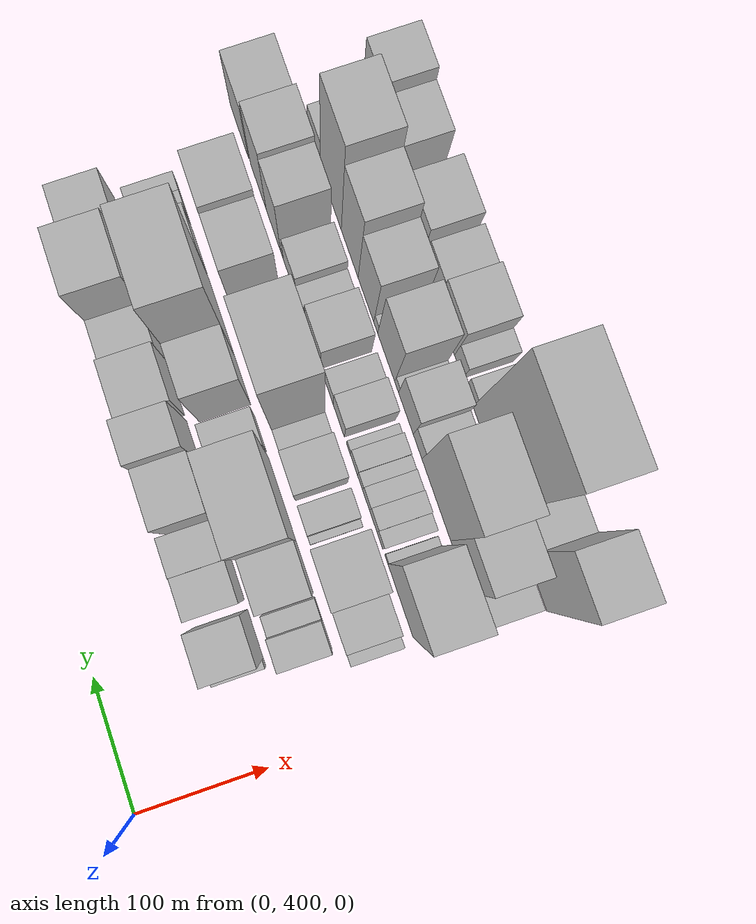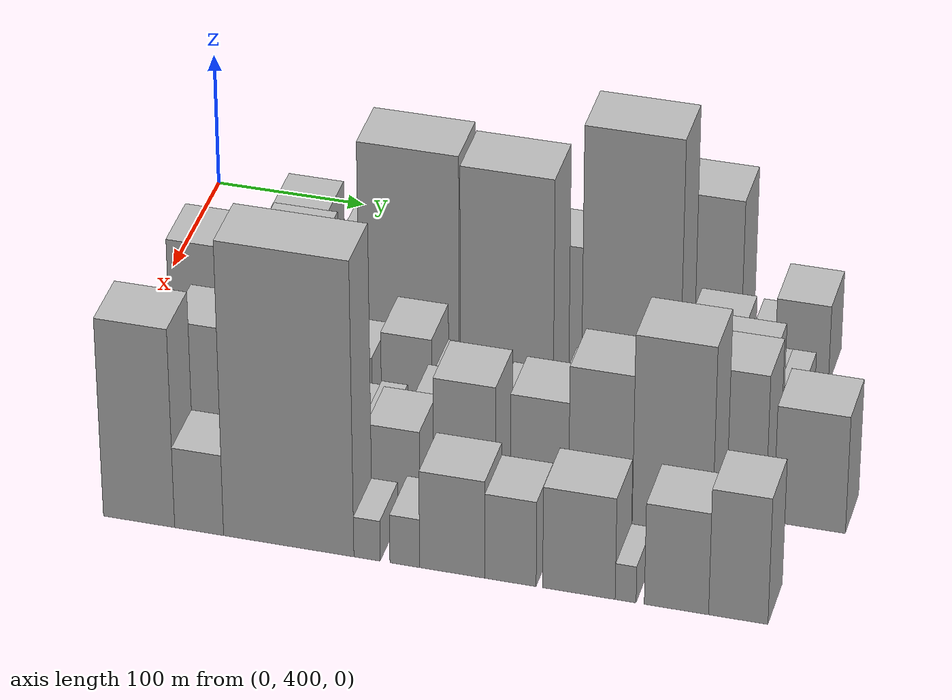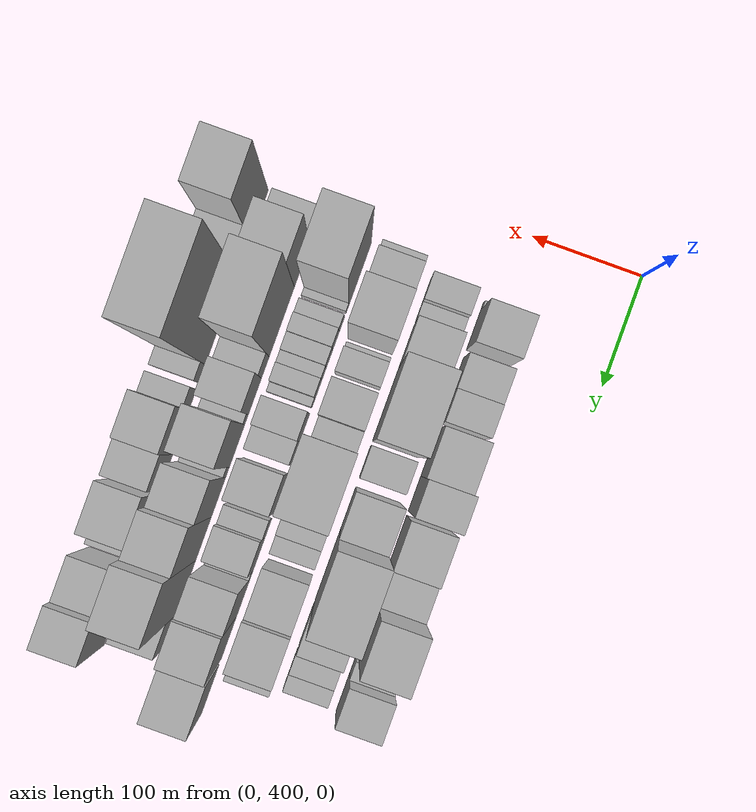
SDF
<sdf version="1.6">
 <world name="default">
  <model name="building_38">
   <static>1</static>
   <pose>100.0000 470.5981 0 0.000000 0.000000 0.000000</pose>
   <link name="link">
    <pose>0 0 7.50 0 0 0</pose>
    <collision name="collision"><geometry><box><size>40.0000 6.5901 15.0000</size></box></geometry></collision>
    <visual name="visual">
     <cast_shadows>0</cast_shadows>
     <geometry><box><size>40.0000 6.5901 15.0000</size></box></geometry>
     <material>
      <script>
       <uri>model://HANNAS_wall/materials/scripts</uri>
       <uri>model://HANNAS_wall/materials/textures</uri>
       <name>vrc/HANNAS_wall</name>
      </script>
     </material>
    </visual>
   </link>
  </model>
  <model name="building_39">
   <static>1</static>
   <pose>100.0000 492.0615 0 0.000000 0.000000 0.000000</pose>
   <link name="link">
    <pose>0 0 36.00 0 0 0</pose>
    <collision name="collision"><geometry><box><size>40.0000 36.3368 72.0000</size></box></geometry></collision>
    <visual name="visual">
     <cast_shadows>0</cast_shadows>
     <geometry><box><size>40.0000 36.3368 72.0000</size></box></geometry>
     <material>
      <script>
       <uri>model://HANNAS_wall/materials/scripts</uri>
       <uri>model://HANNAS_wall/materials/textures</uri>
       <name>vrc/HANNAS_wall</name>
      </script>
     </material>
    </visual>
   </link>
  </model>
  <model name="building_40">
   <static>1</static>
   <pose>100.0000 532.6207 0 0.000000 0.000000 0.000000</pose>
   <link name="link">
    <pose>0 0 27.00 0 0 0</pose>
    <collision name="collision"><geometry><box><size>40.0000 30.7815 54.0000</size></box></geometry></collision>
    <visual name="visual">
     <cast_shadows>0</cast_shadows>
     <geometry><box><size>40.0000 30.7815 54.0000</size></box></geometry>
     <material>
      <script>
       <uri>model://HANNAS_wall/materials/scripts</uri>
       <uri>model://HANNAS_wall/materials/textures</uri>
       <name>vrc/HANNAS_wall</name>
      </script>
     </material>
    </visual>
   </link>
  </model>
  <model name="building_41">
   <static>1</static>
   <pose>100.0000 562.3213 0 0.000000 0.000000 0.000000</pose>
   <link name="link">
    <pose>0 0 28.50 0 0 0</pose>
    <collision name="collision"><geometry><box><size>40.0000 28.6198 57.0000</size></box></geometry></collision>
    <visual name="visual">
     <cast_shadows>0</cast_shadows>
     <geometry><box><size>40.0000 28.6198 57.0000</size></box></geometry>
     <material>
      <script>
       <uri>model://HANNAS_wall/materials/scripts</uri>
       <uri>model://HANNAS_wall/materials/textures</uri>
       <name>vrc/HANNAS_wall</name>
      </script>
     </material>
    </visual>
   </link>
  </model>
  <model name="building_42">
   <static>1</static>
   <pose>100.0000 602.5294 0 0.000000 0.000000 0.000000</pose>
   <link name="link">
    <pose>0 0 37.50 0 0 0</pose>
    <collision name="collision"><geometry><box><size>40.0000 43.7964 75.0000</size></box></geometry></collision>
    <visual name="visual">
     <cast_shadows>0</cast_shadows>
     <geometry><box><size>40.0000 43.7964 75.0000</size></box></geometry>
     <material>
      <script>
       <uri>model://HANNAS_wall/materials/scripts</uri>
       <uri>model://HANNAS_wall/materials/textures</uri>
       <name>vrc/HANNAS_wall</name>
      </script>
     </material>
    </visual>
   </link>
  </model>
  <model name="building_43">
   <static>1</static>
   <pose>100.0000 640.0904 0 0.000000 0.000000 0.000000</pose>
   <link name="link">
    <pose>0 0 49.50 0 0 0</pose>
    <collision name="collision"><geometry><box><size>40.0000 31.3254 99.0000</size></box></geometry></collision>
    <visual name="visual">
     <cast_shadows>0</cast_shadows>
     <geometry><box><size>40.0000 31.3254 99.0000</size></box></geometry>
     <material>
      <script>
       <uri>model://HANNAS_wall/materials/scripts</uri>
       <uri>model://HANNAS_wall/materials/textures</uri>
       <name>vrc/HANNAS_wall</name>
      </script>
     </material>
    </visual>
   </link>
  </model>
  <model name="building_44">
   <static>1</static>
   <pose>100.0000 680.9795 0 0.000000 0.000000 0.000000</pose>
   <link name="link">
    <pose>0 0 37.50 0 0 0</pose>
    <collision name="collision"><geometry><box><size>40.0000 42.4528 75.0000</size></box></geometry></collision>
    <visual name="visual">
     <cast_shadows>0</cast_shadows>
     <geometry><box><size>40.0000 42.4528 75.0000</size></box></geometry>
     <material>
      <script>
       <uri>model://HANNAS_wall/materials/scripts</uri>
       <uri>model://HANNAS_wall/materials/textures</uri>
       <name>vrc/HANNAS_wall</name>
      </script>
     </material>
    </visual>
   </link>
  </model>
  <model name="building_45">
   <static>1</static>
   <pose>100.0000 717.9744 0 0.000000 0.000000 0.000000</pose>
   <link name="link">
    <pose>0 0 31.50 0 0 0</pose>
    <collision name="collision"><geometry><box><size>40.0000 31.5372 63.0000</size></box></geometry></collision>
    <visual name="visual">
     <cast_shadows>0</cast_shadows>
     <geometry><box><size>40.0000 31.5372 63.0000</size></box></geometry>
     <material>
      <script>
       <uri>model://HANNAS_wall/materials/scripts</uri>
       <uri>model://HANNAS_wall/materials/textures</uri>
       <name>vrc/HANNAS_wall</name>
      </script>
     </material>
    </visual>
   </link>
  </model>
  <model name="building_46">
   <static>1</static>
   <pose>100.0000 757.1625 0 0.000000 0.000000 0.000000</pose>
   <link name="link">
    <pose>0 0 64.50 0 0 0</pose>
    <collision name="collision"><geometry><box><size>40.0000 46.8390 129.0000</size></box></geometry></collision>
    <visual name="visual">
     <cast_shadows>0</cast_shadows>
     <geometry><box><size>40.0000 46.8390 129.0000</size></box></geometry>
     <material>
      <script>
       <uri>model://HANNAS_wall/materials/scripts</uri>
       <uri>model://HANNAS_wall/materials/textures</uri>
       <name>vrc/HANNAS_wall</name>
      </script>
     </material>
    </visual>
   </link>
  </model>
  <model name="building_47">
   <static>1</static>
   <pose>100.0000 794.6642 0 0.000000 0.000000 0.000000</pose>
   <link name="link">
    <pose>0 0 15.00 0 0 0</pose>
    <collision name="collision"><geometry><box><size>40.0000 16.1645 30.0000</size></box></geometry></collision>
    <visual name="visual">
     <cast_shadows>0</cast_shadows>
     <geometry><box><size>40.0000 16.1645 30.0000</size></box></geometry>
     <material>
      <script>
       <uri>model://HANNAS_wall/materials/scripts</uri>
       <uri>model://HANNAS_wall/materials/textures</uri>
       <name>vrc/HANNAS_wall</name>
      </script>
     </material>
    </visual>
   </link>
  </model>
  <model name="building_48">
   <static>1</static>
   <pose>100.0000 820.0291 0 0.000000 0.000000 0.000000</pose>
   <link name="link">
    <pose>0 0 30.00 0 0 0</pose>
    <collision name="collision"><geometry><box><size>40.0000 34.5654 60.0000</size></box></geometry></collision>
    <visual name="visual">
     <cast_shadows>0</cast_shadows>
     <geometry><box><size>40.0000 34.5654 60.0000</size></box></geometry>
     <material>
      <script>
       <uri>model://HANNAS_wall/materials/scripts</uri>
       <uri>model://HANNAS_wall/materials/textures</uri>
       <name>vrc/HANNAS_wall</name>
      </script>
     </material>
    </visual>
   </link>
  </model>
  <model name="building_84">
   <static>1</static>
   <pose>149.0000 475.9619 0 0.000000 0.000000 0.000000</pose>
   <link name="link">
    <pose>0 0 22.50 0 0 0</pose>
    <collision name="collision"><geometry><box><size>40.0000 24.0214 45.0000</size></box></geometry></collision>
    <visual name="visual">
     <cast_shadows>0</cast_shadows>
     <geometry><box><size>40.0000 24.0214 45.0000</size></box></geometry>
     <material>
      <script>
       <uri>model://HANNAS_wall/materials/scripts</uri>
       <uri>model://HANNAS_wall/materials/textures</uri>
       <name>vrc/HANNAS_wall</name>
      </script>
     </material>
    </visual>
   </link>
  </model>
  <model name="building_85">
   <static>1</static>
   <pose>149.0000 495.6222 0 0.000000 0.000000 0.000000</pose>
   <link name="link">
    <pose>0 0 15.00 0 0 0</pose>
    <collision name="collision"><geometry><box><size>40.0000 15.2992 30.0000</size></box></geometry></collision>
    <visual name="visual">
     <cast_shadows>0</cast_shadows>
     <geometry><box><size>40.0000 15.2992 30.0000</size></box></geometry>
     <material>
      <script>
       <uri>model://HANNAS_wall/materials/scripts</uri>
       <uri>model://HANNAS_wall/materials/textures</uri>
       <name>vrc/HANNAS_wall</name>
      </script>
     </material>
    </visual>
   </link>
  </model>
  <model name="building_86">
   <static>1</static>
   <pose>149.0000 525.7933 0 0.000000 0.000000 0.000000</pose>
   <link name="link">
    <pose>0 0 37.50 0 0 0</pose>
    <collision name="collision"><geometry><box><size>40.0000 39.0430 75.0000</size></box></geometry></collision>
    <visual name="visual">
     <cast_shadows>0</cast_shadows>
     <geometry><box><size>40.0000 39.0430 75.0000</size></box></geometry>
     <material>
      <script>
       <uri>model://HANNAS_wall/materials/scripts</uri>
       <uri>model://HANNAS_wall/materials/textures</uri>
       <name>vrc/HANNAS_wall</name>
      </script>
     </material>
    </visual>
   </link>
  </model>
  <model name="building_87">
   <static>1</static>
   <pose>149.0000 577.8610 0 0.000000 0.000000 0.000000</pose>
   <link name="link">
    <pose>0 0 82.50 0 0 0</pose>
    <collision name="collision"><geometry><box><size>40.0000 65.0923 165.0000</size></box></geometry></collision>
    <visual name="visual">
     <cast_shadows>0</cast_shadows>
     <geometry><box><size>40.0000 65.0923 165.0000</size></box></geometry>
     <material>
      <script>
       <uri>model://HANNAS_wall/materials/scripts</uri>
       <uri>model://HANNAS_wall/materials/textures</uri>
       <name>vrc/HANNAS_wall</name>
      </script>
     </material>
    </visual>
   </link>
  </model>
  <model name="building_88">
   <static>1</static>
   <pose>149.0000 628.4962 0 0.000000 0.000000 0.000000</pose>
   <link name="link">
    <pose>0 0 25.50 0 0 0</pose>
    <collision name="collision"><geometry><box><size>40.0000 28.1781 51.0000</size></box></geometry></collision>
    <visual name="visual">
     <cast_shadows>0</cast_shadows>
     <geometry><box><size>40.0000 28.1781 51.0000</size></box></geometry>
     <material>
      <script>
       <uri>model://HANNAS_wall/materials/scripts</uri>
       <uri>model://HANNAS_wall/materials/textures</uri>
       <name>vrc/HANNAS_wall</name>
      </script>
     </material>
    </visual>
   </link>
  </model>
  <model name="building_89">
   <static>1</static>
   <pose>149.0000 670.5965 0 0.000000 0.000000 0.000000</pose>
   <link name="link">
    <pose>0 0 55.50 0 0 0</pose>
    <collision name="collision"><geometry><box><size>40.0000 38.0225 111.0000</size></box></geometry></collision>
    <visual name="visual">
     <cast_shadows>0</cast_shadows>
     <geometry><box><size>40.0000 38.0225 111.0000</size></box></geometry>
     <material>
      <script>
       <uri>model://HANNAS_wall/materials/scripts</uri>
       <uri>model://HANNAS_wall/materials/textures</uri>
       <name>vrc/HANNAS_wall</name>
      </script>
     </material>
    </visual>
   </link>
  </model>
  <model name="building_90">
   <static>1</static>
   <pose>149.0000 721.1269 0 0.000000 0.000000 0.000000</pose>
   <link name="link">
    <pose>0 0 100.50 0 0 0</pose>
    <collision name="collision"><geometry><box><size>40.0000 63.0383 201.0000</size></box></geometry></collision>
    <visual name="visual">
     <cast_shadows>0</cast_shadows>
     <geometry><box><size>40.0000 63.0383 201.0000</size></box></geometry>
     <material>
      <script>
       <uri>model://HANNAS_wall/materials/scripts</uri>
       <uri>model://HANNAS_wall/materials/textures</uri>
       <name>vrc/HANNAS_wall</name>
      </script>
     </material>
    </visual>
   </link>
  </model>
  <model name="building_91">
   <static>1</static>
   <pose>149.0000 774.1519 0 0.000000 0.000000 0.000000</pose>
   <link name="link">
    <pose>0 0 33.00 0 0 0</pose>
    <collision name="collision"><geometry><box><size>40.0000 35.0117 66.0000</size></box></geometry></collision>
    <visual name="visual">
     <cast_shadows>0</cast_shadows>
     <geometry><box><size>40.0000 35.0117 66.0000</size></box></geometry>
     <material>
      <script>
       <uri>model://HANNAS_wall/materials/scripts</uri>
       <uri>model://HANNAS_wall/materials/textures</uri>
       <name>vrc/HANNAS_wall</name>
      </script>
     </material>
    </visual>
   </link>
  </model>
  <model name="building_92">
   <static>1</static>
   <pose>149.0000 806.5773 0 0.000000 0.000000 0.000000</pose>
   <link name="link">
    <pose>0 0 15.00 0 0 0</pose>
    <collision name="collision"><geometry><box><size>40.0000 17.8391 30.0000</size></box></geometry></collision>
    <visual name="visual">
     <cast_shadows>0</cast_shadows>
     <geometry><box><size>40.0000 17.8391 30.0000</size></box></geometry>
     <material>
      <script>
       <uri>model://HANNAS_wall/materials/scripts</uri>
       <uri>model://HANNAS_wall/materials/textures</uri>
       <name>vrc/HANNAS_wall</name>
      </script>
     </material>
    </visual>
   </link>
  </model>
  <model name="building_93">
   <static>1</static>
   <pose>149.0000 823.0445 0 0.000000 0.000000 0.000000</pose>
   <link name="link">
    <pose>0 0 15.00 0 0 0</pose>
    <collision name="collision"><geometry><box><size>40.0000 15.0952 30.0000</size></box></geometry></collision>
    <visual name="visual">
     <cast_shadows>0</cast_shadows>
     <geometry><box><size>40.0000 15.0952 30.0000</size></box></geometry>
     <material>
      <script>
       <uri>model://HANNAS_wall/materials/scripts</uri>
       <uri>model://HANNAS_wall/materials/textures</uri>
       <name>vrc/HANNAS_wall</name>
      </script>
     </material>
    </visual>
   </link>
  </model>
  <model name="building_132">
   <static>1</static>
   <pose>198.0000 455.9290 0 0.000000 0.000000 0.000000</pose>
   <link name="link">
    <pose>0 0 12.00 0 0 0</pose>
    <collision name="collision"><geometry><box><size>40.0000 11.9843 24.0000</size></box></geometry></collision>
    <visual name="visual">
     <cast_shadows>0</cast_shadows>
     <geometry><box><size>40.0000 11.9843 24.0000</size></box></geometry>
     <material>
      <script>
       <uri>model://HANNAS_wall/materials/scripts</uri>
       <uri>model://HANNAS_wall/materials/textures</uri>
       <name>vrc/HANNAS_wall</name>
      </script>
     </material>
    </visual>
   </link>
  </model>
  <model name="building_133">
   <static>1</static>
   <pose>198.0000 478.1765 0 0.000000 0.000000 0.000000</pose>
   <link name="link">
    <pose>0 0 30.00 0 0 0</pose>
    <collision name="collision"><geometry><box><size>40.0000 32.5106 60.0000</size></box></geometry></collision>
    <visual name="visual">
     <cast_shadows>0</cast_shadows>
     <geometry><box><size>40.0000 32.5106 60.0000</size></box></geometry>
     <material>
      <script>
       <uri>model://HANNAS_wall/materials/scripts</uri>
       <uri>model://HANNAS_wall/materials/textures</uri>
       <name>vrc/HANNAS_wall</name>
      </script>
     </material>
    </visual>
   </link>
  </model>
  <model name="building_134">
   <static>1</static>
   <pose>198.0000 514.8398 0 0.000000 0.000000 0.000000</pose>
   <link name="link">
    <pose>0 0 58.50 0 0 0</pose>
    <collision name="collision"><geometry><box><size>40.0000 40.8160 117.0000</size></box></geometry></collision>
    <visual name="visual">
     <cast_shadows>0</cast_shadows>
     <geometry><box><size>40.0000 40.8160 117.0000</size></box></geometry>
     <material>
      <script>
       <uri>model://HANNAS_wall/materials/scripts</uri>
       <uri>model://HANNAS_wall/materials/textures</uri>
       <name>vrc/HANNAS_wall</name>
      </script>
     </material>
    </visual>
   </link>
  </model>
  <model name="building_135">
   <static>1</static>
   <pose>198.0000 542.2876 0 0.000000 0.000000 0.000000</pose>
   <link name="link">
    <pose>0 0 7.50 0 0 0</pose>
    <collision name="collision"><geometry><box><size>40.0000 6.0796 15.0000</size></box></geometry></collision>
    <visual name="visual">
     <cast_shadows>0</cast_shadows>
     <geometry><box><size>40.0000 6.0796 15.0000</size></box></geometry>
     <material>
      <script>
       <uri>model://HANNAS_wall/materials/scripts</uri>
       <uri>model://HANNAS_wall/materials/textures</uri>
       <name>vrc/HANNAS_wall</name>
      </script>
     </material>
    </visual>
   </link>
  </model>
  <model name="building_136">
   <static>1</static>
   <pose>198.0000 556.3649 0 0.000000 0.000000 0.000000</pose>
   <link name="link">
    <pose>0 0 19.50 0 0 0</pose>
    <collision name="collision"><geometry><box><size>40.0000 22.0751 39.0000</size></box></geometry></collision>
    <visual name="visual">
     <cast_shadows>0</cast_shadows>
     <geometry><box><size>40.0000 22.0751 39.0000</size></box></geometry>
     <material>
      <script>
       <uri>model://HANNAS_wall/materials/scripts</uri>
       <uri>model://HANNAS_wall/materials/textures</uri>
       <name>vrc/HANNAS_wall</name>
      </script>
     </material>
    </visual>
   </link>
  </model>
  <model name="building_137">
   <static>1</static>
   <pose>198.0000 589.6788 0 0.000000 0.000000 0.000000</pose>
   <link name="link">
    <pose>0 0 30.00 0 0 0</pose>
    <collision name="collision"><geometry><box><size>40.0000 32.5527 60.0000</size></box></geometry></collision>
    <visual name="visual">
     <cast_shadows>0</cast_shadows>
     <geometry><box><size>40.0000 32.5527 60.0000</size></box></geometry>
     <material>
      <script>
       <uri>model://HANNAS_wall/materials/scripts</uri>
       <uri>model://HANNAS_wall/materials/textures</uri>
       <name>vrc/HANNAS_wall</name>
      </script>
     </material>
    </visual>
   </link>
  </model>
  <model name="building_138">
   <static>1</static>
   <pose>198.0000 615.1902 0 0.000000 0.000000 0.000000</pose>
   <link name="link">
    <pose>0 0 16.50 0 0 0</pose>
    <collision name="collision"><geometry><box><size>40.0000 18.4701 33.0000</size></box></geometry></collision>
    <visual name="visual">
     <cast_shadows>0</cast_shadows>
     <geometry><box><size>40.0000 18.4701 33.0000</size></box></geometry>
     <material>
      <script>
       <uri>model://HANNAS_wall/materials/scripts</uri>
       <uri>model://HANNAS_wall/materials/textures</uri>
       <name>vrc/HANNAS_wall</name>
      </script>
     </material>
    </visual>
   </link>
  </model>
  <model name="building_139">
   <static>1</static>
   <pose>198.0000 653.9900 0 0.000000 0.000000 0.000000</pose>
   <link name="link">
    <pose>0 0 96.00 0 0 0</pose>
    <collision name="collision"><geometry><box><size>40.0000 59.1294 192.0000</size></box></geometry></collision>
    <visual name="visual">
     <cast_shadows>0</cast_shadows>
     <geometry><box><size>40.0000 59.1294 192.0000</size></box></geometry>
     <material>
      <script>
       <uri>model://HANNAS_wall/materials/scripts</uri>
       <uri>model://HANNAS_wall/materials/textures</uri>
       <name>vrc/HANNAS_wall</name>
      </script>
     </material>
    </visual>
   </link>
  </model>
  <model name="building_140">
   <static>1</static>
   <pose>198.0000 699.1258 0 0.000000 0.000000 0.000000</pose>
   <link name="link">
    <pose>0 0 21.00 0 0 0</pose>
    <collision name="collision"><geometry><box><size>40.0000 21.1423 42.0000</size></box></geometry></collision>
    <visual name="visual">
     <cast_shadows>0</cast_shadows>
     <geometry><box><size>40.0000 21.1423 42.0000</size></box></geometry>
     <material>
      <script>
       <uri>model://HANNAS_wall/materials/scripts</uri>
       <uri>model://HANNAS_wall/materials/textures</uri>
       <name>vrc/HANNAS_wall</name>
      </script>
     </material>
    </visual>
   </link>
  </model>
  <model name="building_141">
   <static>1</static>
   <pose>198.0000 718.1942 0 0.000000 0.000000 0.000000</pose>
   <link name="link">
    <pose>0 0 16.50 0 0 0</pose>
    <collision name="collision"><geometry><box><size>40.0000 16.9943 33.0000</size></box></geometry></collision>
    <visual name="visual">
     <cast_shadows>0</cast_shadows>
     <geometry><box><size>40.0000 16.9943 33.0000</size></box></geometry>
     <material>
      <script>
       <uri>model://HANNAS_wall/materials/scripts</uri>
       <uri>model://HANNAS_wall/materials/textures</uri>
       <name>vrc/HANNAS_wall</name>
      </script>
     </material>
    </visual>
   </link>
  </model>
  <model name="building_142">
   <static>1</static>
   <pose>198.0000 756.2207 0 0.000000 0.000000 0.000000</pose>
   <link name="link">
    <pose>0 0 36.00 0 0 0</pose>
    <collision name="collision"><geometry><box><size>40.0000 43.0588 72.0000</size></box></geometry></collision>
    <visual name="visual">
     <cast_shadows>0</cast_shadows>
     <geometry><box><size>40.0000 43.0588 72.0000</size></box></geometry>
     <material>
      <script>
       <uri>model://HANNAS_wall/materials/scripts</uri>
       <uri>model://HANNAS_wall/materials/textures</uri>
       <name>vrc/HANNAS_wall</name>
      </script>
     </material>
    </visual>
   </link>
  </model>
  <model name="building_143">
   <static>1</static>
   <pose>198.0000 799.1212 0 0.000000 0.000000 0.000000</pose>
   <link name="link">
    <pose>0 0 42.00 0 0 0</pose>
    <collision name="collision"><geometry><box><size>40.0000 42.7421 84.0000</size></box></geometry></collision>
    <visual name="visual">
     <cast_shadows>0</cast_shadows>
     <geometry><box><size>40.0000 42.7421 84.0000</size></box></geometry>
     <material>
      <script>
       <uri>model://HANNAS_wall/materials/scripts</uri>
       <uri>model://HANNAS_wall/materials/textures</uri>
       <name>vrc/HANNAS_wall</name>
      </script>
     </material>
    </visual>
   </link>
  </model>
  <model name="building_144">
   <static>1</static>
   <pose>198.0000 829.1901 0 0.000000 0.000000 0.000000</pose>
   <link name="link">
    <pose>0 0 16.50 0 0 0</pose>
    <collision name="collision"><geometry><box><size>40.0000 17.3957 33.0000</size></box></geometry></collision>
    <visual name="visual">
     <cast_shadows>0</cast_shadows>
     <geometry><box><size>40.0000 17.3957 33.0000</size></box></geometry>
     <material>
      <script>
       <uri>model://HANNAS_wall/materials/scripts</uri>
       <uri>model://HANNAS_wall/materials/textures</uri>
       <name>vrc/HANNAS_wall</name>
      </script>
     </material>
    </visual>
   </link>
  </model>
  <model name="building_183">
   <static>1</static>
   <pose>247.0000 480.6777 0 0.000000 0.000000 0.000000</pose>
   <link name="link">
    <pose>0 0 70.50 0 0 0</pose>
    <collision name="collision"><geometry><box><size>40.0000 55.5584 141.0000</size></box></geometry></collision>
    <visual name="visual">
     <cast_shadows>0</cast_shadows>
     <geometry><box><size>40.0000 55.5584 141.0000</size></box></geometry>
     <material>
      <script>
       <uri>model://HANNAS_wall/materials/scripts</uri>
       <uri>model://HANNAS_wall/materials/textures</uri>
       <name>vrc/HANNAS_wall</name>
      </script>
     </material>
    </visual>
   </link>
  </model>
  <model name="building_184">
   <static>1</static>
   <pose>247.0000 512.0511 0 0.000000 0.000000 0.000000</pose>
   <link name="link">
    <pose>0 0 7.50 0 0 0</pose>
    <collision name="collision"><geometry><box><size>40.0000 7.1884 15.0000</size></box></geometry></collision>
    <visual name="visual">
     <cast_shadows>0</cast_shadows>
     <geometry><box><size>40.0000 7.1884 15.0000</size></box></geometry>
     <material>
      <script>
       <uri>model://HANNAS_wall/materials/scripts</uri>
       <uri>model://HANNAS_wall/materials/textures</uri>
       <name>vrc/HANNAS_wall</name>
      </script>
     </material>
    </visual>
   </link>
  </model>
  <model name="building_185">
   <static>1</static>
   <pose>247.0000 526.1699 0 0.000000 0.000000 0.000000</pose>
   <link name="link">
    <pose>0 0 13.50 0 0 0</pose>
    <collision name="collision"><geometry><box><size>40.0000 13.0493 27.0000</size></box></geometry></collision>
    <visual name="visual">
     <cast_shadows>0</cast_shadows>
     <geometry><box><size>40.0000 13.0493 27.0000</size></box></geometry>
     <material>
      <script>
       <uri>model://HANNAS_wall/materials/scripts</uri>
       <uri>model://HANNAS_wall/materials/textures</uri>
       <name>vrc/HANNAS_wall</name>
      </script>
     </material>
    </visual>
   </link>
  </model>
  <model name="building_186">
   <static>1</static>
   <pose>247.0000 541.0096 0 0.000000 0.000000 0.000000</pose>
   <link name="link">
    <pose>0 0 16.50 0 0 0</pose>
    <collision name="collision"><geometry><box><size>40.0000 16.6300 33.0000</size></box></geometry></collision>
    <visual name="visual">
     <cast_shadows>0</cast_shadows>
     <geometry><box><size>40.0000 16.6300 33.0000</size></box></geometry>
     <material>
      <script>
       <uri>model://HANNAS_wall/materials/scripts</uri>
       <uri>model://HANNAS_wall/materials/textures</uri>
       <name>vrc/HANNAS_wall</name>
      </script>
     </material>
    </visual>
   </link>
  </model>
  <model name="building_187">
   <static>1</static>
   <pose>247.0000 557.2491 0 0.000000 0.000000 0.000000</pose>
   <link name="link">
    <pose>0 0 15.00 0 0 0</pose>
    <collision name="collision"><geometry><box><size>40.0000 15.8490 30.0000</size></box></geometry></collision>
    <visual name="visual">
     <cast_shadows>0</cast_shadows>
     <geometry><box><size>40.0000 15.8490 30.0000</size></box></geometry>
     <material>
      <script>
       <uri>model://HANNAS_wall/materials/scripts</uri>
       <uri>model://HANNAS_wall/materials/textures</uri>
       <name>vrc/HANNAS_wall</name>
      </script>
     </material>
    </visual>
   </link>
  </model>
  <model name="building_188">
   <static>1</static>
   <pose>247.0000 570.7877 0 0.000000 0.000000 0.000000</pose>
   <link name="link">
    <pose>0 0 13.50 0 0 0</pose>
    <collision name="collision"><geometry><box><size>40.0000 11.2282 27.0000</size></box></geometry></collision>
    <visual name="visual">
     <cast_shadows>0</cast_shadows>
     <geometry><box><size>40.0000 11.2282 27.0000</size></box></geometry>
     <material>
      <script>
       <uri>model://HANNAS_wall/materials/scripts</uri>
       <uri>model://HANNAS_wall/materials/textures</uri>
       <name>vrc/HANNAS_wall</name>
      </script>
     </material>
    </visual>
   </link>
  </model>
  <model name="building_189">
   <static>1</static>
   <pose>247.0000 584.6840 0 0.000000 0.000000 0.000000</pose>
   <link name="link">
    <pose>0 0 15.00 0 0 0</pose>
    <collision name="collision"><geometry><box><size>40.0000 16.5644 30.0000</size></box></geometry></collision>
    <visual name="visual">
     <cast_shadows>0</cast_shadows>
     <geometry><box><size>40.0000 16.5644 30.0000</size></box></geometry>
     <material>
      <script>
       <uri>model://HANNAS_wall/materials/scripts</uri>
       <uri>model://HANNAS_wall/materials/textures</uri>
       <name>vrc/HANNAS_wall</name>
      </script>
     </material>
    </visual>
   </link>
  </model>
  <model name="building_190">
   <static>1</static>
   <pose>247.0000 597.2031 0 0.000000 0.000000 0.000000</pose>
   <link name="link">
    <pose>0 0 9.00 0 0 0</pose>
    <collision name="collision"><geometry><box><size>40.0000 8.4737 18.0000</size></box></geometry></collision>
    <visual name="visual">
     <cast_shadows>0</cast_shadows>
     <geometry><box><size>40.0000 8.4737 18.0000</size></box></geometry>
     <material>
      <script>
       <uri>model://HANNAS_wall/materials/scripts</uri>
       <uri>model://HANNAS_wall/materials/textures</uri>
       <name>vrc/HANNAS_wall</name>
      </script>
     </material>
    </visual>
   </link>
  </model>
  <model name="building_191">
   <static>1</static>
   <pose>247.0000 619.1176 0 0.000000 0.000000 0.000000</pose>
   <link name="link">
    <pose>0 0 24.00 0 0 0</pose>
    <collision name="collision"><geometry><box><size>40.0000 25.3553 48.0000</size></box></geometry></collision>
    <visual name="visual">
     <cast_shadows>0</cast_shadows>
     <geometry><box><size>40.0000 25.3553 48.0000</size></box></geometry>
     <material>
      <script>
       <uri>model://HANNAS_wall/materials/scripts</uri>
       <uri>model://HANNAS_wall/materials/textures</uri>
       <name>vrc/HANNAS_wall</name>
      </script>
     </material>
    </visual>
   </link>
  </model>
  <model name="building_192">
   <static>1</static>
   <pose>247.0000 642.2842 0 0.000000 0.000000 0.000000</pose>
   <link name="link">
    <pose>0 0 18.00 0 0 0</pose>
    <collision name="collision"><geometry><box><size>40.0000 20.9779 36.0000</size></box></geometry></collision>
    <visual name="visual">
     <cast_shadows>0</cast_shadows>
     <geometry><box><size>40.0000 20.9779 36.0000</size></box></geometry>
     <material>
      <script>
       <uri>model://HANNAS_wall/materials/scripts</uri>
       <uri>model://HANNAS_wall/materials/textures</uri>
       <name>vrc/HANNAS_wall</name>
      </script>
     </material>
    </visual>
   </link>
  </model>
  <model name="building_193">
   <static>1</static>
   <pose>247.0000 678.5500 0 0.000000 0.000000 0.000000</pose>
   <link name="link">
    <pose>0 0 30.00 0 0 0</pose>
    <collision name="collision"><geometry><box><size>40.0000 35.5537 60.0000</size></box></geometry></collision>
    <visual name="visual">
     <cast_shadows>0</cast_shadows>
     <geometry><box><size>40.0000 35.5537 60.0000</size></box></geometry>
     <material>
      <script>
       <uri>model://HANNAS_wall/materials/scripts</uri>
       <uri>model://HANNAS_wall/materials/textures</uri>
       <name>vrc/HANNAS_wall</name>
      </script>
     </material>
    </visual>
   </link>
  </model>
  <model name="building_194">
   <static>1</static>
   <pose>247.0000 709.8683 0 0.000000 0.000000 0.000000</pose>
   <link name="link">
    <pose>0 0 16.50 0 0 0</pose>
    <collision name="collision"><geometry><box><size>40.0000 17.0828 33.0000</size></box></geometry></collision>
    <visual name="visual">
     <cast_shadows>0</cast_shadows>
     <geometry><box><size>40.0000 17.0828 33.0000</size></box></geometry>
     <material>
      <script>
       <uri>model://HANNAS_wall/materials/scripts</uri>
       <uri>model://HANNAS_wall/materials/textures</uri>
       <name>vrc/HANNAS_wall</name>
      </script>
     </material>
    </visual>
   </link>
  </model>
  <model name="building_195">
   <static>1</static>
   <pose>247.0000 733.6955 0 0.000000 0.000000 0.000000</pose>
   <link name="link">
    <pose>0 0 25.50 0 0 0</pose>
    <collision name="collision"><geometry><box><size>40.0000 30.5718 51.0000</size></box></geometry></collision>
    <visual name="visual">
     <cast_shadows>0</cast_shadows>
     <geometry><box><size>40.0000 30.5718 51.0000</size></box></geometry>
     <material>
      <script>
       <uri>model://HANNAS_wall/materials/scripts</uri>
       <uri>model://HANNAS_wall/materials/textures</uri>
       <name>vrc/HANNAS_wall</name>
      </script>
     </material>
    </visual>
   </link>
  </model>
  <model name="building_196">
   <static>1</static>
   <pose>247.0000 752.5104 0 0.000000 0.000000 0.000000</pose>
   <link name="link">
    <pose>0 0 7.50 0 0 0</pose>
    <collision name="collision"><geometry><box><size>40.0000 7.0580 15.0000</size></box></geometry></collision>
    <visual name="visual">
     <cast_shadows>0</cast_shadows>
     <geometry><box><size>40.0000 7.0580 15.0000</size></box></geometry>
     <material>
      <script>
       <uri>model://HANNAS_wall/materials/scripts</uri>
       <uri>model://HANNAS_wall/materials/textures</uri>
       <name>vrc/HANNAS_wall</name>
      </script>
     </material>
    </visual>
   </link>
  </model>
  <model name="building_197">
   <static>1</static>
   <pose>247.0000 773.2701 0 0.000000 0.000000 0.000000</pose>
   <link name="link">
    <pose>0 0 49.50 0 0 0</pose>
    <collision name="collision"><geometry><box><size>40.0000 34.4614 99.0000</size></box></geometry></collision>
    <visual name="visual">
     <cast_shadows>0</cast_shadows>
     <geometry><box><size>40.0000 34.4614 99.0000</size></box></geometry>
     <material>
      <script>
       <uri>model://HANNAS_wall/materials/scripts</uri>
       <uri>model://HANNAS_wall/materials/textures</uri>
       <name>vrc/HANNAS_wall</name>
      </script>
     </material>
    </visual>
   </link>
  </model>
  <model name="building_198">
   <static>1</static>
   <pose>247.0000 809.7124 0 0.000000 0.000000 0.000000</pose>
   <link name="link">
    <pose>0 0 54.00 0 0 0</pose>
    <collision name="collision"><geometry><box><size>40.0000 38.4231 108.0000</size></box></geometry></collision>
    <visual name="visual">
     <cast_shadows>0</cast_shadows>
     <geometry><box><size>40.0000 38.4231 108.0000</size></box></geometry>
     <material>
      <script>
       <uri>model://HANNAS_wall/materials/scripts</uri>
       <uri>model://HANNAS_wall/materials/textures</uri>
       <name>vrc/HANNAS_wall</name>
      </script>
     </material>
    </visual>
   </link>
  </model>
  <model name="building_199">
   <static>1</static>
   <pose>247.0000 856.1668 0 0.000000 0.000000 0.000000</pose>
   <link name="link">
    <pose>0 0 43.50 0 0 0</pose>
    <collision name="collision"><geometry><box><size>40.0000 44.4856 87.0000</size></box></geometry></collision>
    <visual name="visual">
     <cast_shadows>0</cast_shadows>
     <geometry><box><size>40.0000 44.4856 87.0000</size></box></geometry>
     <material>
      <script>
       <uri>model://HANNAS_wall/materials/scripts</uri>
       <uri>model://HANNAS_wall/materials/textures</uri>
       <name>vrc/HANNAS_wall</name>
      </script>
     </material>
    </visual>
   </link>
  </model>
  <model name="building_233">
   <static>1</static>
   <pose>296.0000 458.1672 0 0.000000 0.000000 0.000000</pose>
   <link name="link">
    <pose>0 0 22.50 0 0 0</pose>
    <collision name="collision"><geometry><box><size>40.0000 25.2423 45.0000</size></box></geometry></collision>
    <visual name="visual">
     <cast_shadows>0</cast_shadows>
     <geometry><box><size>40.0000 25.2423 45.0000</size></box></geometry>
     <material>
      <script>
       <uri>model://HANNAS_wall/materials/scripts</uri>
       <uri>model://HANNAS_wall/materials/textures</uri>
       <name>vrc/HANNAS_wall</name>
      </script>
     </material>
    </visual>
   </link>
  </model>
  <model name="building_234">
   <static>1</static>
   <pose>296.0000 490.0997 0 0.000000 0.000000 0.000000</pose>
   <link name="link">
    <pose>0 0 58.50 0 0 0</pose>
    <collision name="collision"><geometry><box><size>40.0000 38.6227 117.0000</size></box></geometry></collision>
    <visual name="visual">
     <cast_shadows>0</cast_shadows>
     <geometry><box><size>40.0000 38.6227 117.0000</size></box></geometry>
     <material>
      <script>
       <uri>model://HANNAS_wall/materials/scripts</uri>
       <uri>model://HANNAS_wall/materials/textures</uri>
       <name>vrc/HANNAS_wall</name>
      </script>
     </material>
    </visual>
   </link>
  </model>
  <model name="building_235">
   <static>1</static>
   <pose>296.0000 540.9981 0 0.000000 0.000000 0.000000</pose>
   <link name="link">
    <pose>0 0 79.50 0 0 0</pose>
    <collision name="collision"><geometry><box><size>40.0000 63.1740 159.0000</size></box></geometry></collision>
    <visual name="visual">
     <cast_shadows>0</cast_shadows>
     <geometry><box><size>40.0000 63.1740 159.0000</size></box></geometry>
     <material>
      <script>
       <uri>model://HANNAS_wall/materials/scripts</uri>
       <uri>model://HANNAS_wall/materials/textures</uri>
       <name>vrc/HANNAS_wall</name>
      </script>
     </material>
    </visual>
   </link>
  </model>
  <model name="building_236">
   <static>1</static>
   <pose>296.0000 582.2861 0 0.000000 0.000000 0.000000</pose>
   <link name="link">
    <pose>0 0 18.00 0 0 0</pose>
    <collision name="collision"><geometry><box><size>40.0000 19.4019 36.0000</size></box></geometry></collision>
    <visual name="visual">
     <cast_shadows>0</cast_shadows>
     <geometry><box><size>40.0000 19.4019 36.0000</size></box></geometry>
     <material>
      <script>
       <uri>model://HANNAS_wall/materials/scripts</uri>
       <uri>model://HANNAS_wall/materials/textures</uri>
       <name>vrc/HANNAS_wall</name>
      </script>
     </material>
    </visual>
   </link>
  </model>
  <model name="building_237">
   <static>1</static>
   <pose>296.0000 608.5231 0 0.000000 0.000000 0.000000</pose>
   <link name="link">
    <pose>0 0 31.50 0 0 0</pose>
    <collision name="collision"><geometry><box><size>40.0000 33.0720 63.0000</size></box></geometry></collision>
    <visual name="visual">
     <cast_shadows>0</cast_shadows>
     <geometry><box><size>40.0000 33.0720 63.0000</size></box></geometry>
     <material>
      <script>
       <uri>model://HANNAS_wall/materials/scripts</uri>
       <uri>model://HANNAS_wall/materials/textures</uri>
       <name>vrc/HANNAS_wall</name>
      </script>
     </material>
    </visual>
   </link>
  </model>
  <model name="building_238">
   <static>1</static>
   <pose>296.0000 629.4399 0 0.000000 0.000000 0.000000</pose>
   <link name="link">
    <pose>0 0 9.00 0 0 0</pose>
    <collision name="collision"><geometry><box><size>40.0000 8.7617 18.0000</size></box></geometry></collision>
    <visual name="visual">
     <cast_shadows>0</cast_shadows>
     <geometry><box><size>40.0000 8.7617 18.0000</size></box></geometry>
     <material>
      <script>
       <uri>model://HANNAS_wall/materials/scripts</uri>
       <uri>model://HANNAS_wall/materials/textures</uri>
       <name>vrc/HANNAS_wall</name>
      </script>
     </material>
    </visual>
   </link>
  </model>
  <model name="building_239">
   <static>1</static>
   <pose>296.0000 653.1803 0 0.000000 0.000000 0.000000</pose>
   <link name="link">
    <pose>0 0 52.50 0 0 0</pose>
    <collision name="collision"><geometry><box><size>40.0000 38.7190 105.0000</size></box></geometry></collision>
    <visual name="visual">
     <cast_shadows>0</cast_shadows>
     <geometry><box><size>40.0000 38.7190 105.0000</size></box></geometry>
     <material>
      <script>
       <uri>model://HANNAS_wall/materials/scripts</uri>
       <uri>model://HANNAS_wall/materials/textures</uri>
       <name>vrc/HANNAS_wall</name>
      </script>
     </material>
    </visual>
   </link>
  </model>
  <model name="building_240">
   <static>1</static>
   <pose>296.0000 677.1005 0 0.000000 0.000000 0.000000</pose>
   <link name="link">
    <pose>0 0 10.50 0 0 0</pose>
    <collision name="collision"><geometry><box><size>40.0000 9.1214 21.0000</size></box></geometry></collision>
    <visual name="visual">
     <cast_shadows>0</cast_shadows>
     <geometry><box><size>40.0000 9.1214 21.0000</size></box></geometry>
     <material>
      <script>
       <uri>model://HANNAS_wall/materials/scripts</uri>
       <uri>model://HANNAS_wall/materials/textures</uri>
       <name>vrc/HANNAS_wall</name>
      </script>
     </material>
    </visual>
   </link>
  </model>
  <model name="building_241">
   <static>1</static>
   <pose>296.0000 699.7545 0 0.000000 0.000000 0.000000</pose>
   <link name="link">
    <pose>0 0 51.00 0 0 0</pose>
    <collision name="collision"><geometry><box><size>40.0000 36.1865 102.0000</size></box></geometry></collision>
    <visual name="visual">
     <cast_shadows>0</cast_shadows>
     <geometry><box><size>40.0000 36.1865 102.0000</size></box></geometry>
     <material>
      <script>
       <uri>model://HANNAS_wall/materials/scripts</uri>
       <uri>model://HANNAS_wall/materials/textures</uri>
       <name>vrc/HANNAS_wall</name>
      </script>
     </material>
    </visual>
   </link>
  </model>
  <model name="building_242">
   <static>1</static>
   <pose>296.0000 737.5448 0 0.000000 0.000000 0.000000</pose>
   <link name="link">
    <pose>0 0 64.50 0 0 0</pose>
    <collision name="collision"><geometry><box><size>40.0000 39.3942 129.0000</size></box></geometry></collision>
    <visual name="visual">
     <cast_shadows>0</cast_shadows>
     <geometry><box><size>40.0000 39.3942 129.0000</size></box></geometry>
     <material>
      <script>
       <uri>model://HANNAS_wall/materials/scripts</uri>
       <uri>model://HANNAS_wall/materials/textures</uri>
       <name>vrc/HANNAS_wall</name>
      </script>
     </material>
    </visual>
   </link>
  </model>
  <model name="building_243">
   <static>1</static>
   <pose>296.0000 781.8536 0 0.000000 0.000000 0.000000</pose>
   <link name="link">
    <pose>0 0 79.50 0 0 0</pose>
    <collision name="collision"><geometry><box><size>40.0000 49.2233 159.0000</size></box></geometry></collision>
    <visual name="visual">
     <cast_shadows>0</cast_shadows>
     <geometry><box><size>40.0000 49.2233 159.0000</size></box></geometry>
     <material>
      <script>
       <uri>model://HANNAS_wall/materials/scripts</uri>
       <uri>model://HANNAS_wall/materials/textures</uri>
       <name>vrc/HANNAS_wall</name>
      </script>
     </material>
    </visual>
   </link>
  </model>
  <model name="building_244">
   <static>1</static>
   <pose>296.0000 821.4788 0 0.000000 0.000000 0.000000</pose>
   <link name="link">
    <pose>0 0 27.00 0 0 0</pose>
    <collision name="collision"><geometry><box><size>40.0000 30.0270 54.0000</size></box></geometry></collision>
    <visual name="visual">
     <cast_shadows>0</cast_shadows>
     <geometry><box><size>40.0000 30.0270 54.0000</size></box></geometry>
     <material>
      <script>
       <uri>model://HANNAS_wall/materials/scripts</uri>
       <uri>model://HANNAS_wall/materials/textures</uri>
       <name>vrc/HANNAS_wall</name>
      </script>
     </material>
    </visual>
   </link>
  </model>
  <model name="building_285">
   <static>1</static>
   <pose>345.0000 461.9078 0 0.000000 0.000000 0.000000</pose>
   <link name="link">
    <pose>0 0 73.50 0 0 0</pose>
    <collision name="collision"><geometry><box><size>40.0000 45.2848 147.0000</size></box></geometry></collision>
    <visual name="visual">
     <cast_shadows>0</cast_shadows>
     <geometry><box><size>40.0000 45.2848 147.0000</size></box></geometry>
     <material>
      <script>
       <uri>model://HANNAS_wall/materials/scripts</uri>
       <uri>model://HANNAS_wall/materials/textures</uri>
       <name>vrc/HANNAS_wall</name>
      </script>
     </material>
    </visual>
   </link>
  </model>
  <model name="building_286">
   <static>1</static>
   <pose>345.0000 500.0154 0 0.000000 0.000000 0.000000</pose>
   <link name="link">
    <pose>0 0 30.00 0 0 0</pose>
    <collision name="collision"><geometry><box><size>40.0000 30.9303 60.0000</size></box></geometry></collision>
    <visual name="visual">
     <cast_shadows>0</cast_shadows>
     <geometry><box><size>40.0000 30.9303 60.0000</size></box></geometry>
     <material>
      <script>
       <uri>model://HANNAS_wall/materials/scripts</uri>
       <uri>model://HANNAS_wall/materials/textures</uri>
       <name>vrc/HANNAS_wall</name>
      </script>
     </material>
    </visual>
   </link>
  </model>
  <model name="building_287">
   <static>1</static>
   <pose>345.0000 556.4427 0 0.000000 0.000000 0.000000</pose>
   <link name="link">
    <pose>0 0 108.00 0 0 0</pose>
    <collision name="collision"><geometry><box><size>40.0000 81.9244 216.0000</size></box></geometry></collision>
    <visual name="visual">
     <cast_shadows>0</cast_shadows>
     <geometry><box><size>40.0000 81.9244 216.0000</size></box></geometry>
     <material>
      <script>
       <uri>model://HANNAS_wall/materials/scripts</uri>
       <uri>model://HANNAS_wall/materials/textures</uri>
       <name>vrc/HANNAS_wall</name>
      </script>
     </material>
    </visual>
   </link>
  </model>
  <model name="building_288">
   <static>1</static>
   <pose>345.0000 605.6347 0 0.000000 0.000000 0.000000</pose>
   <link name="link">
    <pose>0 0 15.00 0 0 0</pose>
    <collision name="collision"><geometry><box><size>40.0000 16.4596 30.0000</size></box></geometry></collision>
    <visual name="visual">
     <cast_shadows>0</cast_shadows>
     <geometry><box><size>40.0000 16.4596 30.0000</size></box></geometry>
     <material>
      <script>
       <uri>model://HANNAS_wall/materials/scripts</uri>
       <uri>model://HANNAS_wall/materials/textures</uri>
       <name>vrc/HANNAS_wall</name>
      </script>
     </material>
    </visual>
   </link>
  </model>
  <model name="building_289">
   <static>1</static>
   <pose>345.0000 629.1048 0 0.000000 0.000000 0.000000</pose>
   <link name="link">
    <pose>0 0 18.00 0 0 0</pose>
    <collision name="collision"><geometry><box><size>40.0000 18.4805 36.0000</size></box></geometry></collision>
    <visual name="visual">
     <cast_shadows>0</cast_shadows>
     <geometry><box><size>40.0000 18.4805 36.0000</size></box></geometry>
     <material>
      <script>
       <uri>model://HANNAS_wall/materials/scripts</uri>
       <uri>model://HANNAS_wall/materials/textures</uri>
       <name>vrc/HANNAS_wall</name>
      </script>
     </material>
    </visual>
   </link>
  </model>
  <model name="building_290">
   <static>1</static>
   <pose>345.0000 658.5603 0 0.000000 0.000000 0.000000</pose>
   <link name="link">
    <pose>0 0 36.00 0 0 0</pose>
    <collision name="collision"><geometry><box><size>40.0000 40.4305 72.0000</size></box></geometry></collision>
    <visual name="visual">
     <cast_shadows>0</cast_shadows>
     <geometry><box><size>40.0000 40.4305 72.0000</size></box></geometry>
     <material>
      <script>
       <uri>model://HANNAS_wall/materials/scripts</uri>
       <uri>model://HANNAS_wall/materials/textures</uri>
       <name>vrc/HANNAS_wall</name>
      </script>
     </material>
    </visual>
   </link>
  </model>
  <model name="building_291">
   <static>1</static>
   <pose>345.0000 694.6043 0 0.000000 0.000000 0.000000</pose>
   <link name="link">
    <pose>0 0 31.50 0 0 0</pose>
    <collision name="collision"><geometry><box><size>40.0000 31.6576 63.0000</size></box></geometry></collision>
    <visual name="visual">
     <cast_shadows>0</cast_shadows>
     <geometry><box><size>40.0000 31.6576 63.0000</size></box></geometry>
     <material>
      <script>
       <uri>model://HANNAS_wall/materials/scripts</uri>
       <uri>model://HANNAS_wall/materials/textures</uri>
       <name>vrc/HANNAS_wall</name>
      </script>
     </material>
    </visual>
   </link>
  </model>
  <model name="building_292">
   <static>1</static>
   <pose>345.0000 736.6816 0 0.000000 0.000000 0.000000</pose>
   <link name="link">
    <pose>0 0 37.50 0 0 0</pose>
    <collision name="collision"><geometry><box><size>40.0000 44.4971 75.0000</size></box></geometry></collision>
    <visual name="visual">
     <cast_shadows>0</cast_shadows>
     <geometry><box><size>40.0000 44.4971 75.0000</size></box></geometry>
     <material>
      <script>
       <uri>model://HANNAS_wall/materials/scripts</uri>
       <uri>model://HANNAS_wall/materials/textures</uri>
       <name>vrc/HANNAS_wall</name>
      </script>
     </material>
    </visual>
   </link>
  </model>
  <model name="building_293">
   <static>1</static>
   <pose>345.0000 765.3324 0 0.000000 0.000000 0.000000</pose>
   <link name="link">
    <pose>0 0 13.50 0 0 0</pose>
    <collision name="collision"><geometry><box><size>40.0000 12.8044 27.0000</size></box></geometry></collision>
    <visual name="visual">
     <cast_shadows>0</cast_shadows>
     <geometry><box><size>40.0000 12.8044 27.0000</size></box></geometry>
     <material>
      <script>
       <uri>model://HANNAS_wall/materials/scripts</uri>
       <uri>model://HANNAS_wall/materials/textures</uri>
       <name>vrc/HANNAS_wall</name>
      </script>
     </material>
    </visual>
   </link>
  </model>
  <model name="building_294">
   <static>1</static>
   <pose>345.0000 796.3186 0 0.000000 0.000000 0.000000</pose>
   <link name="link">
    <pose>0 0 37.50 0 0 0</pose>
    <collision name="collision"><geometry><box><size>40.0000 39.1681 75.0000</size></box></geometry></collision>
    <visual name="visual">
     <cast_shadows>0</cast_shadows>
     <geometry><box><size>40.0000 39.1681 75.0000</size></box></geometry>
     <material>
      <script>
       <uri>model://HANNAS_wall/materials/scripts</uri>
       <uri>model://HANNAS_wall/materials/textures</uri>
       <name>vrc/HANNAS_wall</name>
      </script>
     </material>
    </visual>
   </link>
  </model>
  <model name="building_295">
   <static>1</static>
   <pose>345.0000 833.8856 0 0.000000 0.000000 0.000000</pose>
   <link name="link">
    <pose>0 0 46.50 0 0 0</pose>
    <collision name="collision"><geometry><box><size>40.0000 35.9658 93.0000</size></box></geometry></collision>
    <visual name="visual">
     <cast_shadows>0</cast_shadows>
     <geometry><box><size>40.0000 35.9658 93.0000</size></box></geometry>
     <material>
      <script>
       <uri>model://HANNAS_wall/materials/scripts</uri>
       <uri>model://HANNAS_wall/materials/textures</uri>
       <name>vrc/HANNAS_wall</name>
      </script>
     </material>
    </visual>
   </link>
  </model>
 </world>
</sdf>
